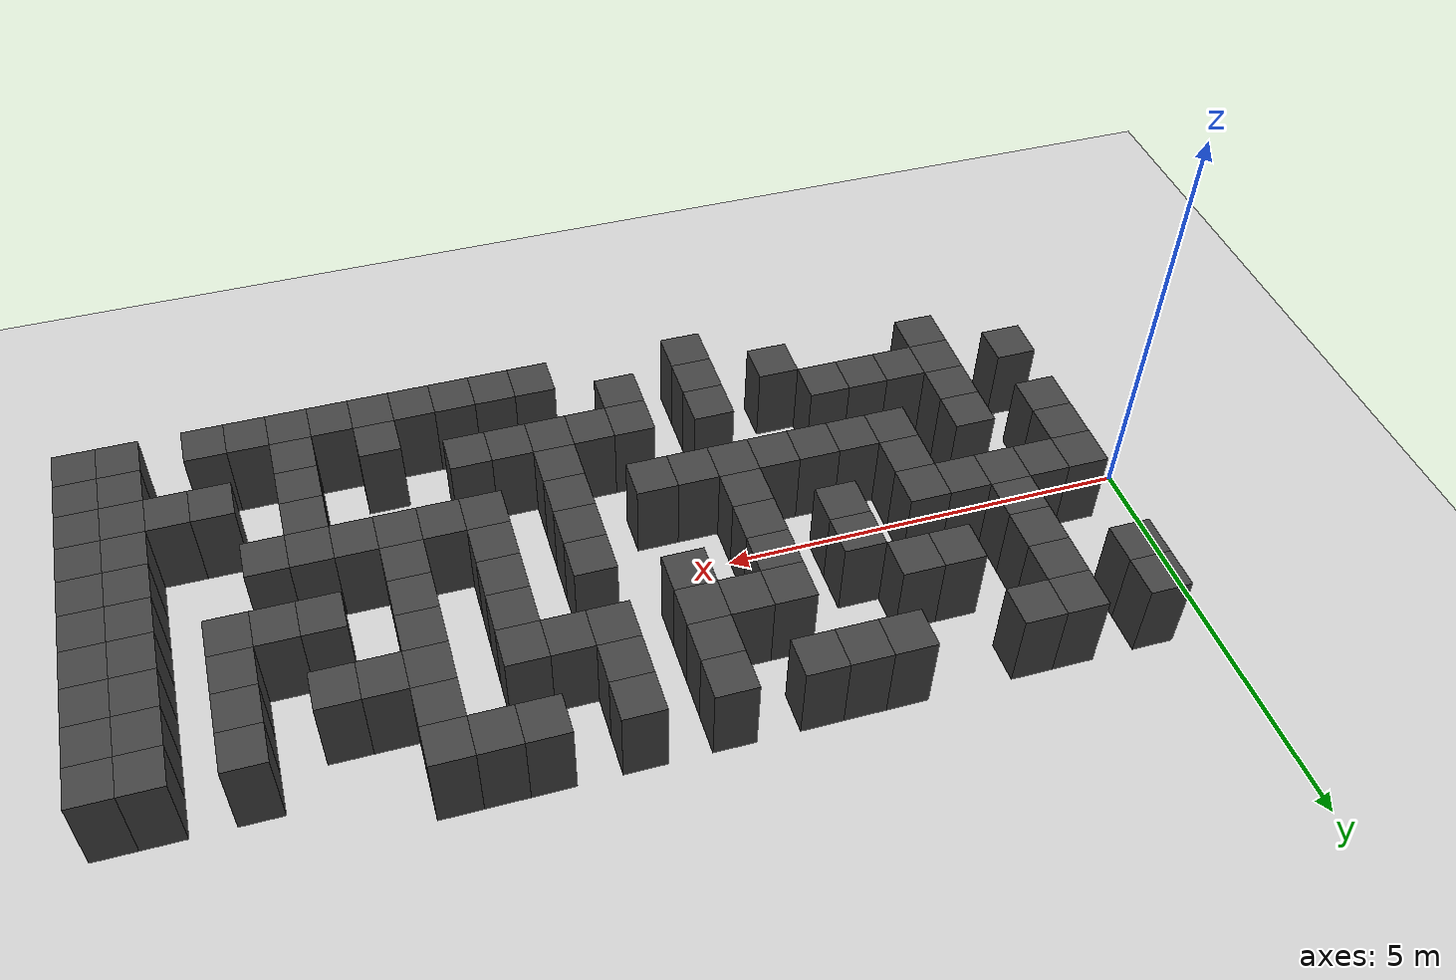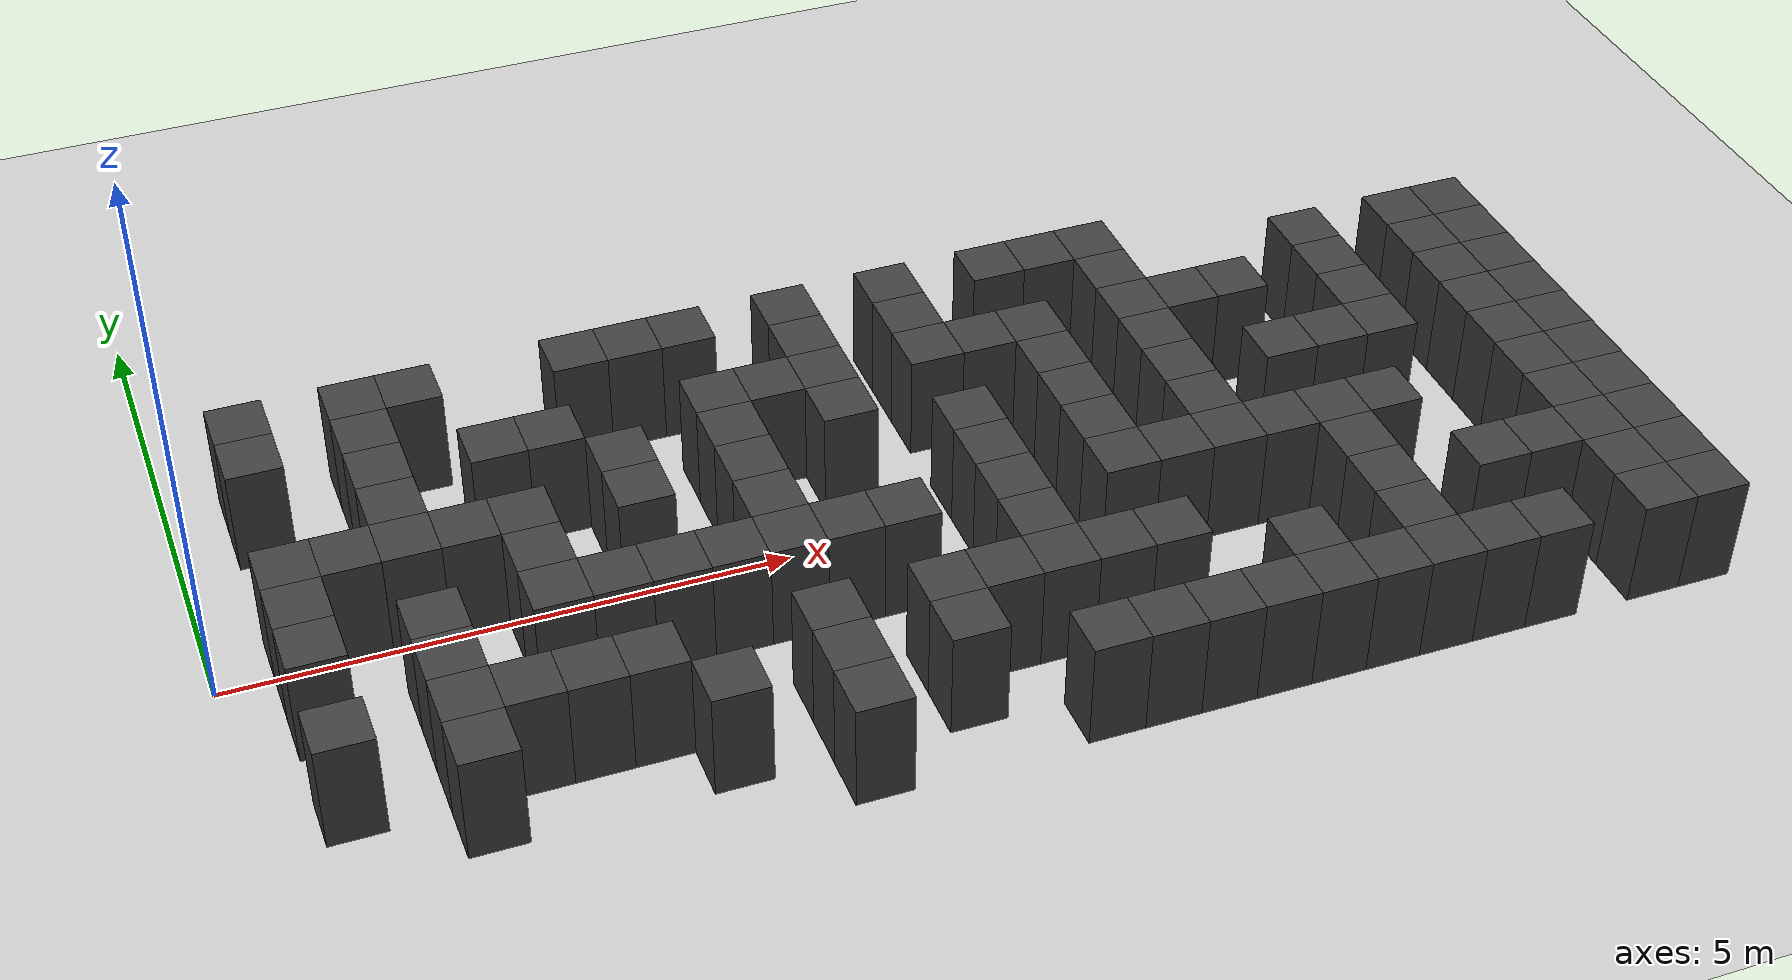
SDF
<sdf version="1.7">
 <world name="map_16588">
  <model name="ground_plane">
   <static>true</static>
   <link name="link">
    <collision name="collision">
     <geometry><plane><normal>0 0 1</normal><size>200 200</size></plane></geometry>
    </collision>
    <visual name="visual">
     <geometry><plane><normal>0 0 1</normal><size>200 200</size></plane></geometry>
     <material><ambient>0.8 0.8 0.8 1</ambient><diffuse>0.8 0.8 0.8 1</diffuse></material>
    </visual>
   </link>
  </model>
  <model name="maze_environment">
   <static>true</static>
   <link name="wall_501">
    <pose>0.750 2.250 0.500 0 0 0</pose>
    <collision name="col"><geometry><box><size>0.5 0.5 1.0</size></box></geometry></collision>
    <visual name="vis">
     <geometry><box><size>0.5 0.5 1.0</size></box></geometry>
     <material><ambient>0.15 0.15 0.15 1</ambient><diffuse>0.25 0.25 0.25 1</diffuse></material>
    </visual>
   </link>
   <link name="wall_502">
    <pose>1.750 2.250 0.500 0 0 0</pose>
    <collision name="col"><geometry><box><size>0.5 0.5 1.0</size></box></geometry></collision>
    <visual name="vis">
     <geometry><box><size>0.5 0.5 1.0</size></box></geometry>
     <material><ambient>0.15 0.15 0.15 1</ambient><diffuse>0.25 0.25 0.25 1</diffuse></material>
    </visual>
   </link>
   <link name="wall_503">
    <pose>2.250 2.250 0.500 0 0 0</pose>
    <collision name="col"><geometry><box><size>0.5 0.5 1.0</size></box></geometry></collision>
    <visual name="vis">
     <geometry><box><size>0.5 0.5 1.0</size></box></geometry>
     <material><ambient>0.15 0.15 0.15 1</ambient><diffuse>0.25 0.25 0.25 1</diffuse></material>
    </visual>
   </link>
   <link name="wall_504">
    <pose>3.750 2.250 0.500 0 0 0</pose>
    <collision name="col"><geometry><box><size>0.5 0.5 1.0</size></box></geometry></collision>
    <visual name="vis">
     <geometry><box><size>0.5 0.5 1.0</size></box></geometry>
     <material><ambient>0.15 0.15 0.15 1</ambient><diffuse>0.25 0.25 0.25 1</diffuse></material>
    </visual>
   </link>
   <link name="wall_505">
    <pose>4.250 2.250 0.500 0 0 0</pose>
    <collision name="col"><geometry><box><size>0.5 0.5 1.0</size></box></geometry></collision>
    <visual name="vis">
     <geometry><box><size>0.5 0.5 1.0</size></box></geometry>
     <material><ambient>0.15 0.15 0.15 1</ambient><diffuse>0.25 0.25 0.25 1</diffuse></material>
    </visual>
   </link>
   <link name="wall_506">
    <pose>4.750 2.250 0.500 0 0 0</pose>
    <collision name="col"><geometry><box><size>0.5 0.5 1.0</size></box></geometry></collision>
    <visual name="vis">
     <geometry><box><size>0.5 0.5 1.0</size></box></geometry>
     <material><ambient>0.15 0.15 0.15 1</ambient><diffuse>0.25 0.25 0.25 1</diffuse></material>
    </visual>
   </link>
   <link name="wall_507">
    <pose>5.750 2.250 0.500 0 0 0</pose>
    <collision name="col"><geometry><box><size>0.5 0.5 1.0</size></box></geometry></collision>
    <visual name="vis">
     <geometry><box><size>0.5 0.5 1.0</size></box></geometry>
     <material><ambient>0.15 0.15 0.15 1</ambient><diffuse>0.25 0.25 0.25 1</diffuse></material>
    </visual>
   </link>
   <link name="wall_508">
    <pose>6.750 2.250 0.500 0 0 0</pose>
    <collision name="col"><geometry><box><size>0.5 0.5 1.0</size></box></geometry></collision>
    <visual name="vis">
     <geometry><box><size>0.5 0.5 1.0</size></box></geometry>
     <material><ambient>0.15 0.15 0.15 1</ambient><diffuse>0.25 0.25 0.25 1</diffuse></material>
    </visual>
   </link>
   <link name="wall_509">
    <pose>7.750 2.250 0.500 0 0 0</pose>
    <collision name="col"><geometry><box><size>0.5 0.5 1.0</size></box></geometry></collision>
    <visual name="vis">
     <geometry><box><size>0.5 0.5 1.0</size></box></geometry>
     <material><ambient>0.15 0.15 0.15 1</ambient><diffuse>0.25 0.25 0.25 1</diffuse></material>
    </visual>
   </link>
   <link name="wall_510">
    <pose>8.250 2.250 0.500 0 0 0</pose>
    <collision name="col"><geometry><box><size>0.5 0.5 1.0</size></box></geometry></collision>
    <visual name="vis">
     <geometry><box><size>0.5 0.5 1.0</size></box></geometry>
     <material><ambient>0.15 0.15 0.15 1</ambient><diffuse>0.25 0.25 0.25 1</diffuse></material>
    </visual>
   </link>
   <link name="wall_511">
    <pose>8.750 2.250 0.500 0 0 0</pose>
    <collision name="col"><geometry><box><size>0.5 0.5 1.0</size></box></geometry></collision>
    <visual name="vis">
     <geometry><box><size>0.5 0.5 1.0</size></box></geometry>
     <material><ambient>0.15 0.15 0.15 1</ambient><diffuse>0.25 0.25 0.25 1</diffuse></material>
    </visual>
   </link>
   <link name="wall_527">
    <pose>0.750 1.750 0.500 0 0 0</pose>
    <collision name="col"><geometry><box><size>0.5 0.5 1.0</size></box></geometry></collision>
    <visual name="vis">
     <geometry><box><size>0.5 0.5 1.0</size></box></geometry>
     <material><ambient>0.15 0.15 0.15 1</ambient><diffuse>0.25 0.25 0.25 1</diffuse></material>
    </visual>
   </link>
   <link name="wall_528">
    <pose>1.750 1.750 0.500 0 0 0</pose>
    <collision name="col"><geometry><box><size>0.5 0.5 1.0</size></box></geometry></collision>
    <visual name="vis">
     <geometry><box><size>0.5 0.5 1.0</size></box></geometry>
     <material><ambient>0.15 0.15 0.15 1</ambient><diffuse>0.25 0.25 0.25 1</diffuse></material>
    </visual>
   </link>
   <link name="wall_529">
    <pose>5.750 1.750 0.500 0 0 0</pose>
    <collision name="col"><geometry><box><size>0.5 0.5 1.0</size></box></geometry></collision>
    <visual name="vis">
     <geometry><box><size>0.5 0.5 1.0</size></box></geometry>
     <material><ambient>0.15 0.15 0.15 1</ambient><diffuse>0.25 0.25 0.25 1</diffuse></material>
    </visual>
   </link>
   <link name="wall_530">
    <pose>6.750 1.750 0.500 0 0 0</pose>
    <collision name="col"><geometry><box><size>0.5 0.5 1.0</size></box></geometry></collision>
    <visual name="vis">
     <geometry><box><size>0.5 0.5 1.0</size></box></geometry>
     <material><ambient>0.15 0.15 0.15 1</ambient><diffuse>0.25 0.25 0.25 1</diffuse></material>
    </visual>
   </link>
   <link name="wall_531">
    <pose>8.750 1.750 0.500 0 0 0</pose>
    <collision name="col"><geometry><box><size>0.5 0.5 1.0</size></box></geometry></collision>
    <visual name="vis">
     <geometry><box><size>0.5 0.5 1.0</size></box></geometry>
     <material><ambient>0.15 0.15 0.15 1</ambient><diffuse>0.25 0.25 0.25 1</diffuse></material>
    </visual>
   </link>
   <link name="wall_532">
    <pose>10.750 1.750 0.500 0 0 0</pose>
    <collision name="col"><geometry><box><size>0.5 0.5 1.0</size></box></geometry></collision>
    <visual name="vis">
     <geometry><box><size>0.5 0.5 1.0</size></box></geometry>
     <material><ambient>0.15 0.15 0.15 1</ambient><diffuse>0.25 0.25 0.25 1</diffuse></material>
    </visual>
   </link>
   <link name="wall_533">
    <pose>11.750 1.750 0.500 0 0 0</pose>
    <collision name="col"><geometry><box><size>0.5 0.5 1.0</size></box></geometry></collision>
    <visual name="vis">
     <geometry><box><size>0.5 0.5 1.0</size></box></geometry>
     <material><ambient>0.15 0.15 0.15 1</ambient><diffuse>0.25 0.25 0.25 1</diffuse></material>
    </visual>
   </link>
   <link name="wall_534">
    <pose>12.250 1.750 0.500 0 0 0</pose>
    <collision name="col"><geometry><box><size>0.5 0.5 1.0</size></box></geometry></collision>
    <visual name="vis">
     <geometry><box><size>0.5 0.5 1.0</size></box></geometry>
     <material><ambient>0.15 0.15 0.15 1</ambient><diffuse>0.25 0.25 0.25 1</diffuse></material>
    </visual>
   </link>
   <link name="wall_551">
    <pose>1.750 1.250 0.500 0 0 0</pose>
    <collision name="col"><geometry><box><size>0.5 0.5 1.0</size></box></geometry></collision>
    <visual name="vis">
     <geometry><box><size>0.5 0.5 1.0</size></box></geometry>
     <material><ambient>0.15 0.15 0.15 1</ambient><diffuse>0.25 0.25 0.25 1</diffuse></material>
    </visual>
   </link>
   <link name="wall_552">
    <pose>2.750 1.250 0.500 0 0 0</pose>
    <collision name="col"><geometry><box><size>0.5 0.5 1.0</size></box></geometry></collision>
    <visual name="vis">
     <geometry><box><size>0.5 0.5 1.0</size></box></geometry>
     <material><ambient>0.15 0.15 0.15 1</ambient><diffuse>0.25 0.25 0.25 1</diffuse></material>
    </visual>
   </link>
   <link name="wall_553">
    <pose>3.250 1.250 0.500 0 0 0</pose>
    <collision name="col"><geometry><box><size>0.5 0.5 1.0</size></box></geometry></collision>
    <visual name="vis">
     <geometry><box><size>0.5 0.5 1.0</size></box></geometry>
     <material><ambient>0.15 0.15 0.15 1</ambient><diffuse>0.25 0.25 0.25 1</diffuse></material>
    </visual>
   </link>
   <link name="wall_554">
    <pose>4.750 1.250 0.500 0 0 0</pose>
    <collision name="col"><geometry><box><size>0.5 0.5 1.0</size></box></geometry></collision>
    <visual name="vis">
     <geometry><box><size>0.5 0.5 1.0</size></box></geometry>
     <material><ambient>0.15 0.15 0.15 1</ambient><diffuse>0.25 0.25 0.25 1</diffuse></material>
    </visual>
   </link>
   <link name="wall_555">
    <pose>5.250 1.250 0.500 0 0 0</pose>
    <collision name="col"><geometry><box><size>0.5 0.5 1.0</size></box></geometry></collision>
    <visual name="vis">
     <geometry><box><size>0.5 0.5 1.0</size></box></geometry>
     <material><ambient>0.15 0.15 0.15 1</ambient><diffuse>0.25 0.25 0.25 1</diffuse></material>
    </visual>
   </link>
   <link name="wall_556">
    <pose>5.750 1.250 0.500 0 0 0</pose>
    <collision name="col"><geometry><box><size>0.5 0.5 1.0</size></box></geometry></collision>
    <visual name="vis">
     <geometry><box><size>0.5 0.5 1.0</size></box></geometry>
     <material><ambient>0.15 0.15 0.15 1</ambient><diffuse>0.25 0.25 0.25 1</diffuse></material>
    </visual>
   </link>
   <link name="wall_557">
    <pose>6.750 1.250 0.500 0 0 0</pose>
    <collision name="col"><geometry><box><size>0.5 0.5 1.0</size></box></geometry></collision>
    <visual name="vis">
     <geometry><box><size>0.5 0.5 1.0</size></box></geometry>
     <material><ambient>0.15 0.15 0.15 1</ambient><diffuse>0.25 0.25 0.25 1</diffuse></material>
    </visual>
   </link>
   <link name="wall_558">
    <pose>7.250 1.250 0.500 0 0 0</pose>
    <collision name="col"><geometry><box><size>0.5 0.5 1.0</size></box></geometry></collision>
    <visual name="vis">
     <geometry><box><size>0.5 0.5 1.0</size></box></geometry>
     <material><ambient>0.15 0.15 0.15 1</ambient><diffuse>0.25 0.25 0.25 1</diffuse></material>
    </visual>
   </link>
   <link name="wall_559">
    <pose>7.750 1.250 0.500 0 0 0</pose>
    <collision name="col"><geometry><box><size>0.5 0.5 1.0</size></box></geometry></collision>
    <visual name="vis">
     <geometry><box><size>0.5 0.5 1.0</size></box></geometry>
     <material><ambient>0.15 0.15 0.15 1</ambient><diffuse>0.25 0.25 0.25 1</diffuse></material>
    </visual>
   </link>
   <link name="wall_560">
    <pose>8.750 1.250 0.500 0 0 0</pose>
    <collision name="col"><geometry><box><size>0.5 0.5 1.0</size></box></geometry></collision>
    <visual name="vis">
     <geometry><box><size>0.5 0.5 1.0</size></box></geometry>
     <material><ambient>0.15 0.15 0.15 1</ambient><diffuse>0.25 0.25 0.25 1</diffuse></material>
    </visual>
   </link>
   <link name="wall_561">
    <pose>9.250 1.250 0.500 0 0 0</pose>
    <collision name="col"><geometry><box><size>0.5 0.5 1.0</size></box></geometry></collision>
    <visual name="vis">
     <geometry><box><size>0.5 0.5 1.0</size></box></geometry>
     <material><ambient>0.15 0.15 0.15 1</ambient><diffuse>0.25 0.25 0.25 1</diffuse></material>
    </visual>
   </link>
   <link name="wall_562">
    <pose>9.750 1.250 0.500 0 0 0</pose>
    <collision name="col"><geometry><box><size>0.5 0.5 1.0</size></box></geometry></collision>
    <visual name="vis">
     <geometry><box><size>0.5 0.5 1.0</size></box></geometry>
     <material><ambient>0.15 0.15 0.15 1</ambient><diffuse>0.25 0.25 0.25 1</diffuse></material>
    </visual>
   </link>
   <link name="wall_563">
    <pose>10.750 1.250 0.500 0 0 0</pose>
    <collision name="col"><geometry><box><size>0.5 0.5 1.0</size></box></geometry></collision>
    <visual name="vis">
     <geometry><box><size>0.5 0.5 1.0</size></box></geometry>
     <material><ambient>0.15 0.15 0.15 1</ambient><diffuse>0.25 0.25 0.25 1</diffuse></material>
    </visual>
   </link>
   <link name="wall_564">
    <pose>11.750 1.250 0.500 0 0 0</pose>
    <collision name="col"><geometry><box><size>0.5 0.5 1.0</size></box></geometry></collision>
    <visual name="vis">
     <geometry><box><size>0.5 0.5 1.0</size></box></geometry>
     <material><ambient>0.15 0.15 0.15 1</ambient><diffuse>0.25 0.25 0.25 1</diffuse></material>
    </visual>
   </link>
   <link name="wall_565">
    <pose>12.250 1.250 0.500 0 0 0</pose>
    <collision name="col"><geometry><box><size>0.5 0.5 1.0</size></box></geometry></collision>
    <visual name="vis">
     <geometry><box><size>0.5 0.5 1.0</size></box></geometry>
     <material><ambient>0.15 0.15 0.15 1</ambient><diffuse>0.25 0.25 0.25 1</diffuse></material>
    </visual>
   </link>
   <link name="wall_575">
    <pose>1.750 0.750 0.500 0 0 0</pose>
    <collision name="col"><geometry><box><size>0.5 0.5 1.0</size></box></geometry></collision>
    <visual name="vis">
     <geometry><box><size>0.5 0.5 1.0</size></box></geometry>
     <material><ambient>0.15 0.15 0.15 1</ambient><diffuse>0.25 0.25 0.25 1</diffuse></material>
    </visual>
   </link>
   <link name="wall_576">
    <pose>3.750 0.750 0.500 0 0 0</pose>
    <collision name="col"><geometry><box><size>0.5 0.5 1.0</size></box></geometry></collision>
    <visual name="vis">
     <geometry><box><size>0.5 0.5 1.0</size></box></geometry>
     <material><ambient>0.15 0.15 0.15 1</ambient><diffuse>0.25 0.25 0.25 1</diffuse></material>
    </visual>
   </link>
   <link name="wall_577">
    <pose>4.750 0.750 0.500 0 0 0</pose>
    <collision name="col"><geometry><box><size>0.5 0.5 1.0</size></box></geometry></collision>
    <visual name="vis">
     <geometry><box><size>0.5 0.5 1.0</size></box></geometry>
     <material><ambient>0.15 0.15 0.15 1</ambient><diffuse>0.25 0.25 0.25 1</diffuse></material>
    </visual>
   </link>
   <link name="wall_578">
    <pose>5.750 0.750 0.500 0 0 0</pose>
    <collision name="col"><geometry><box><size>0.5 0.5 1.0</size></box></geometry></collision>
    <visual name="vis">
     <geometry><box><size>0.5 0.5 1.0</size></box></geometry>
     <material><ambient>0.15 0.15 0.15 1</ambient><diffuse>0.25 0.25 0.25 1</diffuse></material>
    </visual>
   </link>
   <link name="wall_579">
    <pose>7.750 0.750 0.500 0 0 0</pose>
    <collision name="col"><geometry><box><size>0.5 0.5 1.0</size></box></geometry></collision>
    <visual name="vis">
     <geometry><box><size>0.5 0.5 1.0</size></box></geometry>
     <material><ambient>0.15 0.15 0.15 1</ambient><diffuse>0.25 0.25 0.25 1</diffuse></material>
    </visual>
   </link>
   <link name="wall_580">
    <pose>8.750 0.750 0.500 0 0 0</pose>
    <collision name="col"><geometry><box><size>0.5 0.5 1.0</size></box></geometry></collision>
    <visual name="vis">
     <geometry><box><size>0.5 0.5 1.0</size></box></geometry>
     <material><ambient>0.15 0.15 0.15 1</ambient><diffuse>0.25 0.25 0.25 1</diffuse></material>
    </visual>
   </link>
   <link name="wall_581">
    <pose>10.750 0.750 0.500 0 0 0</pose>
    <collision name="col"><geometry><box><size>0.5 0.5 1.0</size></box></geometry></collision>
    <visual name="vis">
     <geometry><box><size>0.5 0.5 1.0</size></box></geometry>
     <material><ambient>0.15 0.15 0.15 1</ambient><diffuse>0.25 0.25 0.25 1</diffuse></material>
    </visual>
   </link>
   <link name="wall_582">
    <pose>11.750 0.750 0.500 0 0 0</pose>
    <collision name="col"><geometry><box><size>0.5 0.5 1.0</size></box></geometry></collision>
    <visual name="vis">
     <geometry><box><size>0.5 0.5 1.0</size></box></geometry>
     <material><ambient>0.15 0.15 0.15 1</ambient><diffuse>0.25 0.25 0.25 1</diffuse></material>
    </visual>
   </link>
   <link name="wall_583">
    <pose>12.250 0.750 0.500 0 0 0</pose>
    <collision name="col"><geometry><box><size>0.5 0.5 1.0</size></box></geometry></collision>
    <visual name="vis">
     <geometry><box><size>0.5 0.5 1.0</size></box></geometry>
     <material><ambient>0.15 0.15 0.15 1</ambient><diffuse>0.25 0.25 0.25 1</diffuse></material>
    </visual>
   </link>
   <link name="wall_601">
    <pose>0.750 0.250 0.500 0 0 0</pose>
    <collision name="col"><geometry><box><size>0.5 0.5 1.0</size></box></geometry></collision>
    <visual name="vis">
     <geometry><box><size>0.5 0.5 1.0</size></box></geometry>
     <material><ambient>0.15 0.15 0.15 1</ambient><diffuse>0.25 0.25 0.25 1</diffuse></material>
    </visual>
   </link>
   <link name="wall_602">
    <pose>1.250 0.250 0.500 0 0 0</pose>
    <collision name="col"><geometry><box><size>0.5 0.5 1.0</size></box></geometry></collision>
    <visual name="vis">
     <geometry><box><size>0.5 0.5 1.0</size></box></geometry>
     <material><ambient>0.15 0.15 0.15 1</ambient><diffuse>0.25 0.25 0.25 1</diffuse></material>
    </visual>
   </link>
   <link name="wall_603">
    <pose>1.750 0.250 0.500 0 0 0</pose>
    <collision name="col"><geometry><box><size>0.5 0.5 1.0</size></box></geometry></collision>
    <visual name="vis">
     <geometry><box><size>0.5 0.5 1.0</size></box></geometry>
     <material><ambient>0.15 0.15 0.15 1</ambient><diffuse>0.25 0.25 0.25 1</diffuse></material>
    </visual>
   </link>
   <link name="wall_604">
    <pose>2.250 0.250 0.500 0 0 0</pose>
    <collision name="col"><geometry><box><size>0.5 0.5 1.0</size></box></geometry></collision>
    <visual name="vis">
     <geometry><box><size>0.5 0.5 1.0</size></box></geometry>
     <material><ambient>0.15 0.15 0.15 1</ambient><diffuse>0.25 0.25 0.25 1</diffuse></material>
    </visual>
   </link>
   <link name="wall_605">
    <pose>2.750 0.250 0.500 0 0 0</pose>
    <collision name="col"><geometry><box><size>0.5 0.5 1.0</size></box></geometry></collision>
    <visual name="vis">
     <geometry><box><size>0.5 0.5 1.0</size></box></geometry>
     <material><ambient>0.15 0.15 0.15 1</ambient><diffuse>0.25 0.25 0.25 1</diffuse></material>
    </visual>
   </link>
   <link name="wall_606">
    <pose>3.750 0.250 0.500 0 0 0</pose>
    <collision name="col"><geometry><box><size>0.5 0.5 1.0</size></box></geometry></collision>
    <visual name="vis">
     <geometry><box><size>0.5 0.5 1.0</size></box></geometry>
     <material><ambient>0.15 0.15 0.15 1</ambient><diffuse>0.25 0.25 0.25 1</diffuse></material>
    </visual>
   </link>
   <link name="wall_607">
    <pose>4.750 0.250 0.500 0 0 0</pose>
    <collision name="col"><geometry><box><size>0.5 0.5 1.0</size></box></geometry></collision>
    <visual name="vis">
     <geometry><box><size>0.5 0.5 1.0</size></box></geometry>
     <material><ambient>0.15 0.15 0.15 1</ambient><diffuse>0.25 0.25 0.25 1</diffuse></material>
    </visual>
   </link>
   <link name="wall_608">
    <pose>6.750 0.250 0.500 0 0 0</pose>
    <collision name="col"><geometry><box><size>0.5 0.5 1.0</size></box></geometry></collision>
    <visual name="vis">
     <geometry><box><size>0.5 0.5 1.0</size></box></geometry>
     <material><ambient>0.15 0.15 0.15 1</ambient><diffuse>0.25 0.25 0.25 1</diffuse></material>
    </visual>
   </link>
   <link name="wall_609">
    <pose>7.750 0.250 0.500 0 0 0</pose>
    <collision name="col"><geometry><box><size>0.5 0.5 1.0</size></box></geometry></collision>
    <visual name="vis">
     <geometry><box><size>0.5 0.5 1.0</size></box></geometry>
     <material><ambient>0.15 0.15 0.15 1</ambient><diffuse>0.25 0.25 0.25 1</diffuse></material>
    </visual>
   </link>
   <link name="wall_610">
    <pose>8.750 0.250 0.500 0 0 0</pose>
    <collision name="col"><geometry><box><size>0.5 0.5 1.0</size></box></geometry></collision>
    <visual name="vis">
     <geometry><box><size>0.5 0.5 1.0</size></box></geometry>
     <material><ambient>0.15 0.15 0.15 1</ambient><diffuse>0.25 0.25 0.25 1</diffuse></material>
    </visual>
   </link>
   <link name="wall_611">
    <pose>9.750 0.250 0.500 0 0 0</pose>
    <collision name="col"><geometry><box><size>0.5 0.5 1.0</size></box></geometry></collision>
    <visual name="vis">
     <geometry><box><size>0.5 0.5 1.0</size></box></geometry>
     <material><ambient>0.15 0.15 0.15 1</ambient><diffuse>0.25 0.25 0.25 1</diffuse></material>
    </visual>
   </link>
   <link name="wall_612">
    <pose>10.250 0.250 0.500 0 0 0</pose>
    <collision name="col"><geometry><box><size>0.5 0.5 1.0</size></box></geometry></collision>
    <visual name="vis">
     <geometry><box><size>0.5 0.5 1.0</size></box></geometry>
     <material><ambient>0.15 0.15 0.15 1</ambient><diffuse>0.25 0.25 0.25 1</diffuse></material>
    </visual>
   </link>
   <link name="wall_613">
    <pose>10.750 0.250 0.500 0 0 0</pose>
    <collision name="col"><geometry><box><size>0.5 0.5 1.0</size></box></geometry></collision>
    <visual name="vis">
     <geometry><box><size>0.5 0.5 1.0</size></box></geometry>
     <material><ambient>0.15 0.15 0.15 1</ambient><diffuse>0.25 0.25 0.25 1</diffuse></material>
    </visual>
   </link>
   <link name="wall_614">
    <pose>11.750 0.250 0.500 0 0 0</pose>
    <collision name="col"><geometry><box><size>0.5 0.5 1.0</size></box></geometry></collision>
    <visual name="vis">
     <geometry><box><size>0.5 0.5 1.0</size></box></geometry>
     <material><ambient>0.15 0.15 0.15 1</ambient><diffuse>0.25 0.25 0.25 1</diffuse></material>
    </visual>
   </link>
   <link name="wall_615">
    <pose>12.250 0.250 0.500 0 0 0</pose>
    <collision name="col"><geometry><box><size>0.5 0.5 1.0</size></box></geometry></collision>
    <visual name="vis">
     <geometry><box><size>0.5 0.5 1.0</size></box></geometry>
     <material><ambient>0.15 0.15 0.15 1</ambient><diffuse>0.25 0.25 0.25 1</diffuse></material>
    </visual>
   </link>
   <link name="wall_623">
    <pose>0.750 -0.250 0.500 0 0 0</pose>
    <collision name="col"><geometry><box><size>0.5 0.5 1.0</size></box></geometry></collision>
    <visual name="vis">
     <geometry><box><size>0.5 0.5 1.0</size></box></geometry>
     <material><ambient>0.15 0.15 0.15 1</ambient><diffuse>0.25 0.25 0.25 1</diffuse></material>
    </visual>
   </link>
   <link name="wall_624">
    <pose>2.750 -0.250 0.500 0 0 0</pose>
    <collision name="col"><geometry><box><size>0.5 0.5 1.0</size></box></geometry></collision>
    <visual name="vis">
     <geometry><box><size>0.5 0.5 1.0</size></box></geometry>
     <material><ambient>0.15 0.15 0.15 1</ambient><diffuse>0.25 0.25 0.25 1</diffuse></material>
    </visual>
   </link>
   <link name="wall_625">
    <pose>4.750 -0.250 0.500 0 0 0</pose>
    <collision name="col"><geometry><box><size>0.5 0.5 1.0</size></box></geometry></collision>
    <visual name="vis">
     <geometry><box><size>0.5 0.5 1.0</size></box></geometry>
     <material><ambient>0.15 0.15 0.15 1</ambient><diffuse>0.25 0.25 0.25 1</diffuse></material>
    </visual>
   </link>
   <link name="wall_626">
    <pose>6.750 -0.250 0.500 0 0 0</pose>
    <collision name="col"><geometry><box><size>0.5 0.5 1.0</size></box></geometry></collision>
    <visual name="vis">
     <geometry><box><size>0.5 0.5 1.0</size></box></geometry>
     <material><ambient>0.15 0.15 0.15 1</ambient><diffuse>0.25 0.25 0.25 1</diffuse></material>
    </visual>
   </link>
   <link name="wall_627">
    <pose>7.750 -0.250 0.500 0 0 0</pose>
    <collision name="col"><geometry><box><size>0.5 0.5 1.0</size></box></geometry></collision>
    <visual name="vis">
     <geometry><box><size>0.5 0.5 1.0</size></box></geometry>
     <material><ambient>0.15 0.15 0.15 1</ambient><diffuse>0.25 0.25 0.25 1</diffuse></material>
    </visual>
   </link>
   <link name="wall_628">
    <pose>8.750 -0.250 0.500 0 0 0</pose>
    <collision name="col"><geometry><box><size>0.5 0.5 1.0</size></box></geometry></collision>
    <visual name="vis">
     <geometry><box><size>0.5 0.5 1.0</size></box></geometry>
     <material><ambient>0.15 0.15 0.15 1</ambient><diffuse>0.25 0.25 0.25 1</diffuse></material>
    </visual>
   </link>
   <link name="wall_629">
    <pose>11.750 -0.250 0.500 0 0 0</pose>
    <collision name="col"><geometry><box><size>0.5 0.5 1.0</size></box></geometry></collision>
    <visual name="vis">
     <geometry><box><size>0.5 0.5 1.0</size></box></geometry>
     <material><ambient>0.15 0.15 0.15 1</ambient><diffuse>0.25 0.25 0.25 1</diffuse></material>
    </visual>
   </link>
   <link name="wall_630">
    <pose>12.250 -0.250 0.500 0 0 0</pose>
    <collision name="col"><geometry><box><size>0.5 0.5 1.0</size></box></geometry></collision>
    <visual name="vis">
     <geometry><box><size>0.5 0.5 1.0</size></box></geometry>
     <material><ambient>0.15 0.15 0.15 1</ambient><diffuse>0.25 0.25 0.25 1</diffuse></material>
    </visual>
   </link>
   <link name="wall_649">
    <pose>0.750 -0.750 0.500 0 0 0</pose>
    <collision name="col"><geometry><box><size>0.5 0.5 1.0</size></box></geometry></collision>
    <visual name="vis">
     <geometry><box><size>0.5 0.5 1.0</size></box></geometry>
     <material><ambient>0.15 0.15 0.15 1</ambient><diffuse>0.25 0.25 0.25 1</diffuse></material>
    </visual>
   </link>
   <link name="wall_650">
    <pose>1.750 -0.750 0.500 0 0 0</pose>
    <collision name="col"><geometry><box><size>0.5 0.5 1.0</size></box></geometry></collision>
    <visual name="vis">
     <geometry><box><size>0.5 0.5 1.0</size></box></geometry>
     <material><ambient>0.15 0.15 0.15 1</ambient><diffuse>0.25 0.25 0.25 1</diffuse></material>
    </visual>
   </link>
   <link name="wall_651">
    <pose>2.750 -0.750 0.500 0 0 0</pose>
    <collision name="col"><geometry><box><size>0.5 0.5 1.0</size></box></geometry></collision>
    <visual name="vis">
     <geometry><box><size>0.5 0.5 1.0</size></box></geometry>
     <material><ambient>0.15 0.15 0.15 1</ambient><diffuse>0.25 0.25 0.25 1</diffuse></material>
    </visual>
   </link>
   <link name="wall_652">
    <pose>3.250 -0.750 0.500 0 0 0</pose>
    <collision name="col"><geometry><box><size>0.5 0.5 1.0</size></box></geometry></collision>
    <visual name="vis">
     <geometry><box><size>0.5 0.5 1.0</size></box></geometry>
     <material><ambient>0.15 0.15 0.15 1</ambient><diffuse>0.25 0.25 0.25 1</diffuse></material>
    </visual>
   </link>
   <link name="wall_653">
    <pose>3.750 -0.750 0.500 0 0 0</pose>
    <collision name="col"><geometry><box><size>0.5 0.5 1.0</size></box></geometry></collision>
    <visual name="vis">
     <geometry><box><size>0.5 0.5 1.0</size></box></geometry>
     <material><ambient>0.15 0.15 0.15 1</ambient><diffuse>0.25 0.25 0.25 1</diffuse></material>
    </visual>
   </link>
   <link name="wall_654">
    <pose>4.250 -0.750 0.500 0 0 0</pose>
    <collision name="col"><geometry><box><size>0.5 0.5 1.0</size></box></geometry></collision>
    <visual name="vis">
     <geometry><box><size>0.5 0.5 1.0</size></box></geometry>
     <material><ambient>0.15 0.15 0.15 1</ambient><diffuse>0.25 0.25 0.25 1</diffuse></material>
    </visual>
   </link>
   <link name="wall_655">
    <pose>4.750 -0.750 0.500 0 0 0</pose>
    <collision name="col"><geometry><box><size>0.5 0.5 1.0</size></box></geometry></collision>
    <visual name="vis">
     <geometry><box><size>0.5 0.5 1.0</size></box></geometry>
     <material><ambient>0.15 0.15 0.15 1</ambient><diffuse>0.25 0.25 0.25 1</diffuse></material>
    </visual>
   </link>
   <link name="wall_656">
    <pose>5.250 -0.750 0.500 0 0 0</pose>
    <collision name="col"><geometry><box><size>0.5 0.5 1.0</size></box></geometry></collision>
    <visual name="vis">
     <geometry><box><size>0.5 0.5 1.0</size></box></geometry>
     <material><ambient>0.15 0.15 0.15 1</ambient><diffuse>0.25 0.25 0.25 1</diffuse></material>
    </visual>
   </link>
   <link name="wall_657">
    <pose>5.750 -0.750 0.500 0 0 0</pose>
    <collision name="col"><geometry><box><size>0.5 0.5 1.0</size></box></geometry></collision>
    <visual name="vis">
     <geometry><box><size>0.5 0.5 1.0</size></box></geometry>
     <material><ambient>0.15 0.15 0.15 1</ambient><diffuse>0.25 0.25 0.25 1</diffuse></material>
    </visual>
   </link>
   <link name="wall_658">
    <pose>6.750 -0.750 0.500 0 0 0</pose>
    <collision name="col"><geometry><box><size>0.5 0.5 1.0</size></box></geometry></collision>
    <visual name="vis">
     <geometry><box><size>0.5 0.5 1.0</size></box></geometry>
     <material><ambient>0.15 0.15 0.15 1</ambient><diffuse>0.25 0.25 0.25 1</diffuse></material>
    </visual>
   </link>
   <link name="wall_659">
    <pose>7.750 -0.750 0.500 0 0 0</pose>
    <collision name="col"><geometry><box><size>0.5 0.5 1.0</size></box></geometry></collision>
    <visual name="vis">
     <geometry><box><size>0.5 0.5 1.0</size></box></geometry>
     <material><ambient>0.15 0.15 0.15 1</ambient><diffuse>0.25 0.25 0.25 1</diffuse></material>
    </visual>
   </link>
   <link name="wall_660">
    <pose>8.250 -0.750 0.500 0 0 0</pose>
    <collision name="col"><geometry><box><size>0.5 0.5 1.0</size></box></geometry></collision>
    <visual name="vis">
     <geometry><box><size>0.5 0.5 1.0</size></box></geometry>
     <material><ambient>0.15 0.15 0.15 1</ambient><diffuse>0.25 0.25 0.25 1</diffuse></material>
    </visual>
   </link>
   <link name="wall_661">
    <pose>8.750 -0.750 0.500 0 0 0</pose>
    <collision name="col"><geometry><box><size>0.5 0.5 1.0</size></box></geometry></collision>
    <visual name="vis">
     <geometry><box><size>0.5 0.5 1.0</size></box></geometry>
     <material><ambient>0.15 0.15 0.15 1</ambient><diffuse>0.25 0.25 0.25 1</diffuse></material>
    </visual>
   </link>
   <link name="wall_662">
    <pose>9.250 -0.750 0.500 0 0 0</pose>
    <collision name="col"><geometry><box><size>0.5 0.5 1.0</size></box></geometry></collision>
    <visual name="vis">
     <geometry><box><size>0.5 0.5 1.0</size></box></geometry>
     <material><ambient>0.15 0.15 0.15 1</ambient><diffuse>0.25 0.25 0.25 1</diffuse></material>
    </visual>
   </link>
   <link name="wall_663">
    <pose>9.750 -0.750 0.500 0 0 0</pose>
    <collision name="col"><geometry><box><size>0.5 0.5 1.0</size></box></geometry></collision>
    <visual name="vis">
     <geometry><box><size>0.5 0.5 1.0</size></box></geometry>
     <material><ambient>0.15 0.15 0.15 1</ambient><diffuse>0.25 0.25 0.25 1</diffuse></material>
    </visual>
   </link>
   <link name="wall_664">
    <pose>10.250 -0.750 0.500 0 0 0</pose>
    <collision name="col"><geometry><box><size>0.5 0.5 1.0</size></box></geometry></collision>
    <visual name="vis">
     <geometry><box><size>0.5 0.5 1.0</size></box></geometry>
     <material><ambient>0.15 0.15 0.15 1</ambient><diffuse>0.25 0.25 0.25 1</diffuse></material>
    </visual>
   </link>
   <link name="wall_665">
    <pose>11.750 -0.750 0.500 0 0 0</pose>
    <collision name="col"><geometry><box><size>0.5 0.5 1.0</size></box></geometry></collision>
    <visual name="vis">
     <geometry><box><size>0.5 0.5 1.0</size></box></geometry>
     <material><ambient>0.15 0.15 0.15 1</ambient><diffuse>0.25 0.25 0.25 1</diffuse></material>
    </visual>
   </link>
   <link name="wall_666">
    <pose>12.250 -0.750 0.500 0 0 0</pose>
    <collision name="col"><geometry><box><size>0.5 0.5 1.0</size></box></geometry></collision>
    <visual name="vis">
     <geometry><box><size>0.5 0.5 1.0</size></box></geometry>
     <material><ambient>0.15 0.15 0.15 1</ambient><diffuse>0.25 0.25 0.25 1</diffuse></material>
    </visual>
   </link>
   <link name="wall_673">
    <pose>1.750 -1.250 0.500 0 0 0</pose>
    <collision name="col"><geometry><box><size>0.5 0.5 1.0</size></box></geometry></collision>
    <visual name="vis">
     <geometry><box><size>0.5 0.5 1.0</size></box></geometry>
     <material><ambient>0.15 0.15 0.15 1</ambient><diffuse>0.25 0.25 0.25 1</diffuse></material>
    </visual>
   </link>
   <link name="wall_674">
    <pose>6.750 -1.250 0.500 0 0 0</pose>
    <collision name="col"><geometry><box><size>0.5 0.5 1.0</size></box></geometry></collision>
    <visual name="vis">
     <geometry><box><size>0.5 0.5 1.0</size></box></geometry>
     <material><ambient>0.15 0.15 0.15 1</ambient><diffuse>0.25 0.25 0.25 1</diffuse></material>
    </visual>
   </link>
   <link name="wall_675">
    <pose>9.750 -1.250 0.500 0 0 0</pose>
    <collision name="col"><geometry><box><size>0.5 0.5 1.0</size></box></geometry></collision>
    <visual name="vis">
     <geometry><box><size>0.5 0.5 1.0</size></box></geometry>
     <material><ambient>0.15 0.15 0.15 1</ambient><diffuse>0.25 0.25 0.25 1</diffuse></material>
    </visual>
   </link>
   <link name="wall_676">
    <pose>11.750 -1.250 0.500 0 0 0</pose>
    <collision name="col"><geometry><box><size>0.5 0.5 1.0</size></box></geometry></collision>
    <visual name="vis">
     <geometry><box><size>0.5 0.5 1.0</size></box></geometry>
     <material><ambient>0.15 0.15 0.15 1</ambient><diffuse>0.25 0.25 0.25 1</diffuse></material>
    </visual>
   </link>
   <link name="wall_677">
    <pose>12.250 -1.250 0.500 0 0 0</pose>
    <collision name="col"><geometry><box><size>0.5 0.5 1.0</size></box></geometry></collision>
    <visual name="vis">
     <geometry><box><size>0.5 0.5 1.0</size></box></geometry>
     <material><ambient>0.15 0.15 0.15 1</ambient><diffuse>0.25 0.25 0.25 1</diffuse></material>
    </visual>
   </link>
   <link name="wall_695">
    <pose>0.750 -1.750 0.500 0 0 0</pose>
    <collision name="col"><geometry><box><size>0.5 0.5 1.0</size></box></geometry></collision>
    <visual name="vis">
     <geometry><box><size>0.5 0.5 1.0</size></box></geometry>
     <material><ambient>0.15 0.15 0.15 1</ambient><diffuse>0.25 0.25 0.25 1</diffuse></material>
    </visual>
   </link>
   <link name="wall_696">
    <pose>1.750 -1.750 0.500 0 0 0</pose>
    <collision name="col"><geometry><box><size>0.5 0.5 1.0</size></box></geometry></collision>
    <visual name="vis">
     <geometry><box><size>0.5 0.5 1.0</size></box></geometry>
     <material><ambient>0.15 0.15 0.15 1</ambient><diffuse>0.25 0.25 0.25 1</diffuse></material>
    </visual>
   </link>
   <link name="wall_697">
    <pose>2.250 -1.750 0.500 0 0 0</pose>
    <collision name="col"><geometry><box><size>0.5 0.5 1.0</size></box></geometry></collision>
    <visual name="vis">
     <geometry><box><size>0.5 0.5 1.0</size></box></geometry>
     <material><ambient>0.15 0.15 0.15 1</ambient><diffuse>0.25 0.25 0.25 1</diffuse></material>
    </visual>
   </link>
   <link name="wall_698">
    <pose>2.750 -1.750 0.500 0 0 0</pose>
    <collision name="col"><geometry><box><size>0.5 0.5 1.0</size></box></geometry></collision>
    <visual name="vis">
     <geometry><box><size>0.5 0.5 1.0</size></box></geometry>
     <material><ambient>0.15 0.15 0.15 1</ambient><diffuse>0.25 0.25 0.25 1</diffuse></material>
    </visual>
   </link>
   <link name="wall_699">
    <pose>3.250 -1.750 0.500 0 0 0</pose>
    <collision name="col"><geometry><box><size>0.5 0.5 1.0</size></box></geometry></collision>
    <visual name="vis">
     <geometry><box><size>0.5 0.5 1.0</size></box></geometry>
     <material><ambient>0.15 0.15 0.15 1</ambient><diffuse>0.25 0.25 0.25 1</diffuse></material>
    </visual>
   </link>
   <link name="wall_700">
    <pose>4.750 -1.750 0.500 0 0 0</pose>
    <collision name="col"><geometry><box><size>0.5 0.5 1.0</size></box></geometry></collision>
    <visual name="vis">
     <geometry><box><size>0.5 0.5 1.0</size></box></geometry>
     <material><ambient>0.15 0.15 0.15 1</ambient><diffuse>0.25 0.25 0.25 1</diffuse></material>
    </visual>
   </link>
   <link name="wall_701">
    <pose>5.750 -1.750 0.500 0 0 0</pose>
    <collision name="col"><geometry><box><size>0.5 0.5 1.0</size></box></geometry></collision>
    <visual name="vis">
     <geometry><box><size>0.5 0.5 1.0</size></box></geometry>
     <material><ambient>0.15 0.15 0.15 1</ambient><diffuse>0.25 0.25 0.25 1</diffuse></material>
    </visual>
   </link>
   <link name="wall_702">
    <pose>6.250 -1.750 0.500 0 0 0</pose>
    <collision name="col"><geometry><box><size>0.5 0.5 1.0</size></box></geometry></collision>
    <visual name="vis">
     <geometry><box><size>0.5 0.5 1.0</size></box></geometry>
     <material><ambient>0.15 0.15 0.15 1</ambient><diffuse>0.25 0.25 0.25 1</diffuse></material>
    </visual>
   </link>
   <link name="wall_703">
    <pose>6.750 -1.750 0.500 0 0 0</pose>
    <collision name="col"><geometry><box><size>0.5 0.5 1.0</size></box></geometry></collision>
    <visual name="vis">
     <geometry><box><size>0.5 0.5 1.0</size></box></geometry>
     <material><ambient>0.15 0.15 0.15 1</ambient><diffuse>0.25 0.25 0.25 1</diffuse></material>
    </visual>
   </link>
   <link name="wall_704">
    <pose>7.250 -1.750 0.500 0 0 0</pose>
    <collision name="col"><geometry><box><size>0.5 0.5 1.0</size></box></geometry></collision>
    <visual name="vis">
     <geometry><box><size>0.5 0.5 1.0</size></box></geometry>
     <material><ambient>0.15 0.15 0.15 1</ambient><diffuse>0.25 0.25 0.25 1</diffuse></material>
    </visual>
   </link>
   <link name="wall_705">
    <pose>7.750 -1.750 0.500 0 0 0</pose>
    <collision name="col"><geometry><box><size>0.5 0.5 1.0</size></box></geometry></collision>
    <visual name="vis">
     <geometry><box><size>0.5 0.5 1.0</size></box></geometry>
     <material><ambient>0.15 0.15 0.15 1</ambient><diffuse>0.25 0.25 0.25 1</diffuse></material>
    </visual>
   </link>
   <link name="wall_706">
    <pose>9.750 -1.750 0.500 0 0 0</pose>
    <collision name="col"><geometry><box><size>0.5 0.5 1.0</size></box></geometry></collision>
    <visual name="vis">
     <geometry><box><size>0.5 0.5 1.0</size></box></geometry>
     <material><ambient>0.15 0.15 0.15 1</ambient><diffuse>0.25 0.25 0.25 1</diffuse></material>
    </visual>
   </link>
   <link name="wall_707">
    <pose>10.750 -1.750 0.500 0 0 0</pose>
    <collision name="col"><geometry><box><size>0.5 0.5 1.0</size></box></geometry></collision>
    <visual name="vis">
     <geometry><box><size>0.5 0.5 1.0</size></box></geometry>
     <material><ambient>0.15 0.15 0.15 1</ambient><diffuse>0.25 0.25 0.25 1</diffuse></material>
    </visual>
   </link>
   <link name="wall_708">
    <pose>11.250 -1.750 0.500 0 0 0</pose>
    <collision name="col"><geometry><box><size>0.5 0.5 1.0</size></box></geometry></collision>
    <visual name="vis">
     <geometry><box><size>0.5 0.5 1.0</size></box></geometry>
     <material><ambient>0.15 0.15 0.15 1</ambient><diffuse>0.25 0.25 0.25 1</diffuse></material>
    </visual>
   </link>
   <link name="wall_709">
    <pose>11.750 -1.750 0.500 0 0 0</pose>
    <collision name="col"><geometry><box><size>0.5 0.5 1.0</size></box></geometry></collision>
    <visual name="vis">
     <geometry><box><size>0.5 0.5 1.0</size></box></geometry>
     <material><ambient>0.15 0.15 0.15 1</ambient><diffuse>0.25 0.25 0.25 1</diffuse></material>
    </visual>
   </link>
   <link name="wall_710">
    <pose>12.250 -1.750 0.500 0 0 0</pose>
    <collision name="col"><geometry><box><size>0.5 0.5 1.0</size></box></geometry></collision>
    <visual name="vis">
     <geometry><box><size>0.5 0.5 1.0</size></box></geometry>
     <material><ambient>0.15 0.15 0.15 1</ambient><diffuse>0.25 0.25 0.25 1</diffuse></material>
    </visual>
   </link>
   <link name="wall_715">
    <pose>1.750 -2.250 0.500 0 0 0</pose>
    <collision name="col"><geometry><box><size>0.5 0.5 1.0</size></box></geometry></collision>
    <visual name="vis">
     <geometry><box><size>0.5 0.5 1.0</size></box></geometry>
     <material><ambient>0.15 0.15 0.15 1</ambient><diffuse>0.25 0.25 0.25 1</diffuse></material>
    </visual>
   </link>
   <link name="wall_716">
    <pose>3.750 -2.250 0.500 0 0 0</pose>
    <collision name="col"><geometry><box><size>0.5 0.5 1.0</size></box></geometry></collision>
    <visual name="vis">
     <geometry><box><size>0.5 0.5 1.0</size></box></geometry>
     <material><ambient>0.15 0.15 0.15 1</ambient><diffuse>0.25 0.25 0.25 1</diffuse></material>
    </visual>
   </link>
   <link name="wall_717">
    <pose>4.750 -2.250 0.500 0 0 0</pose>
    <collision name="col"><geometry><box><size>0.5 0.5 1.0</size></box></geometry></collision>
    <visual name="vis">
     <geometry><box><size>0.5 0.5 1.0</size></box></geometry>
     <material><ambient>0.15 0.15 0.15 1</ambient><diffuse>0.25 0.25 0.25 1</diffuse></material>
    </visual>
   </link>
   <link name="wall_718">
    <pose>5.750 -2.250 0.500 0 0 0</pose>
    <collision name="col"><geometry><box><size>0.5 0.5 1.0</size></box></geometry></collision>
    <visual name="vis">
     <geometry><box><size>0.5 0.5 1.0</size></box></geometry>
     <material><ambient>0.15 0.15 0.15 1</ambient><diffuse>0.25 0.25 0.25 1</diffuse></material>
    </visual>
   </link>
   <link name="wall_719">
    <pose>8.750 -2.250 0.500 0 0 0</pose>
    <collision name="col"><geometry><box><size>0.5 0.5 1.0</size></box></geometry></collision>
    <visual name="vis">
     <geometry><box><size>0.5 0.5 1.0</size></box></geometry>
     <material><ambient>0.15 0.15 0.15 1</ambient><diffuse>0.25 0.25 0.25 1</diffuse></material>
    </visual>
   </link>
   <link name="wall_720">
    <pose>9.750 -2.250 0.500 0 0 0</pose>
    <collision name="col"><geometry><box><size>0.5 0.5 1.0</size></box></geometry></collision>
    <visual name="vis">
     <geometry><box><size>0.5 0.5 1.0</size></box></geometry>
     <material><ambient>0.15 0.15 0.15 1</ambient><diffuse>0.25 0.25 0.25 1</diffuse></material>
    </visual>
   </link>
   <link name="wall_721">
    <pose>11.750 -2.250 0.500 0 0 0</pose>
    <collision name="col"><geometry><box><size>0.5 0.5 1.0</size></box></geometry></collision>
    <visual name="vis">
     <geometry><box><size>0.5 0.5 1.0</size></box></geometry>
     <material><ambient>0.15 0.15 0.15 1</ambient><diffuse>0.25 0.25 0.25 1</diffuse></material>
    </visual>
   </link>
   <link name="wall_722">
    <pose>12.250 -2.250 0.500 0 0 0</pose>
    <collision name="col"><geometry><box><size>0.5 0.5 1.0</size></box></geometry></collision>
    <visual name="vis">
     <geometry><box><size>0.5 0.5 1.0</size></box></geometry>
     <material><ambient>0.15 0.15 0.15 1</ambient><diffuse>0.25 0.25 0.25 1</diffuse></material>
    </visual>
   </link>
   <link name="wall_745">
    <pose>4.750 -2.750 0.500 0 0 0</pose>
    <collision name="col"><geometry><box><size>0.5 0.5 1.0</size></box></geometry></collision>
    <visual name="vis">
     <geometry><box><size>0.5 0.5 1.0</size></box></geometry>
     <material><ambient>0.15 0.15 0.15 1</ambient><diffuse>0.25 0.25 0.25 1</diffuse></material>
    </visual>
   </link>
   <link name="wall_746">
    <pose>6.750 -2.750 0.500 0 0 0</pose>
    <collision name="col"><geometry><box><size>0.5 0.5 1.0</size></box></geometry></collision>
    <visual name="vis">
     <geometry><box><size>0.5 0.5 1.0</size></box></geometry>
     <material><ambient>0.15 0.15 0.15 1</ambient><diffuse>0.25 0.25 0.25 1</diffuse></material>
    </visual>
   </link>
   <link name="wall_747">
    <pose>7.250 -2.750 0.500 0 0 0</pose>
    <collision name="col"><geometry><box><size>0.5 0.5 1.0</size></box></geometry></collision>
    <visual name="vis">
     <geometry><box><size>0.5 0.5 1.0</size></box></geometry>
     <material><ambient>0.15 0.15 0.15 1</ambient><diffuse>0.25 0.25 0.25 1</diffuse></material>
    </visual>
   </link>
   <link name="wall_748">
    <pose>7.750 -2.750 0.500 0 0 0</pose>
    <collision name="col"><geometry><box><size>0.5 0.5 1.0</size></box></geometry></collision>
    <visual name="vis">
     <geometry><box><size>0.5 0.5 1.0</size></box></geometry>
     <material><ambient>0.15 0.15 0.15 1</ambient><diffuse>0.25 0.25 0.25 1</diffuse></material>
    </visual>
   </link>
   <link name="wall_749">
    <pose>8.250 -2.750 0.500 0 0 0</pose>
    <collision name="col"><geometry><box><size>0.5 0.5 1.0</size></box></geometry></collision>
    <visual name="vis">
     <geometry><box><size>0.5 0.5 1.0</size></box></geometry>
     <material><ambient>0.15 0.15 0.15 1</ambient><diffuse>0.25 0.25 0.25 1</diffuse></material>
    </visual>
   </link>
   <link name="wall_750">
    <pose>8.750 -2.750 0.500 0 0 0</pose>
    <collision name="col"><geometry><box><size>0.5 0.5 1.0</size></box></geometry></collision>
    <visual name="vis">
     <geometry><box><size>0.5 0.5 1.0</size></box></geometry>
     <material><ambient>0.15 0.15 0.15 1</ambient><diffuse>0.25 0.25 0.25 1</diffuse></material>
    </visual>
   </link>
   <link name="wall_751">
    <pose>9.250 -2.750 0.500 0 0 0</pose>
    <collision name="col"><geometry><box><size>0.5 0.5 1.0</size></box></geometry></collision>
    <visual name="vis">
     <geometry><box><size>0.5 0.5 1.0</size></box></geometry>
     <material><ambient>0.15 0.15 0.15 1</ambient><diffuse>0.25 0.25 0.25 1</diffuse></material>
    </visual>
   </link>
   <link name="wall_752">
    <pose>9.750 -2.750 0.500 0 0 0</pose>
    <collision name="col"><geometry><box><size>0.5 0.5 1.0</size></box></geometry></collision>
    <visual name="vis">
     <geometry><box><size>0.5 0.5 1.0</size></box></geometry>
     <material><ambient>0.15 0.15 0.15 1</ambient><diffuse>0.25 0.25 0.25 1</diffuse></material>
    </visual>
   </link>
   <link name="wall_753">
    <pose>10.250 -2.750 0.500 0 0 0</pose>
    <collision name="col"><geometry><box><size>0.5 0.5 1.0</size></box></geometry></collision>
    <visual name="vis">
     <geometry><box><size>0.5 0.5 1.0</size></box></geometry>
     <material><ambient>0.15 0.15 0.15 1</ambient><diffuse>0.25 0.25 0.25 1</diffuse></material>
    </visual>
   </link>
   <link name="wall_754">
    <pose>10.750 -2.750 0.500 0 0 0</pose>
    <collision name="col"><geometry><box><size>0.5 0.5 1.0</size></box></geometry></collision>
    <visual name="vis">
     <geometry><box><size>0.5 0.5 1.0</size></box></geometry>
     <material><ambient>0.15 0.15 0.15 1</ambient><diffuse>0.25 0.25 0.25 1</diffuse></material>
    </visual>
   </link>
   <link name="wall_755">
    <pose>11.750 -2.750 0.500 0 0 0</pose>
    <collision name="col"><geometry><box><size>0.5 0.5 1.0</size></box></geometry></collision>
    <visual name="vis">
     <geometry><box><size>0.5 0.5 1.0</size></box></geometry>
     <material><ambient>0.15 0.15 0.15 1</ambient><diffuse>0.25 0.25 0.25 1</diffuse></material>
    </visual>
   </link>
   <link name="wall_756">
    <pose>12.250 -2.750 0.500 0 0 0</pose>
    <collision name="col"><geometry><box><size>0.5 0.5 1.0</size></box></geometry></collision>
    <visual name="vis">
     <geometry><box><size>0.5 0.5 1.0</size></box></geometry>
     <material><ambient>0.15 0.15 0.15 1</ambient><diffuse>0.25 0.25 0.25 1</diffuse></material>
    </visual>
   </link>
  </model>
 </world>
</sdf>
